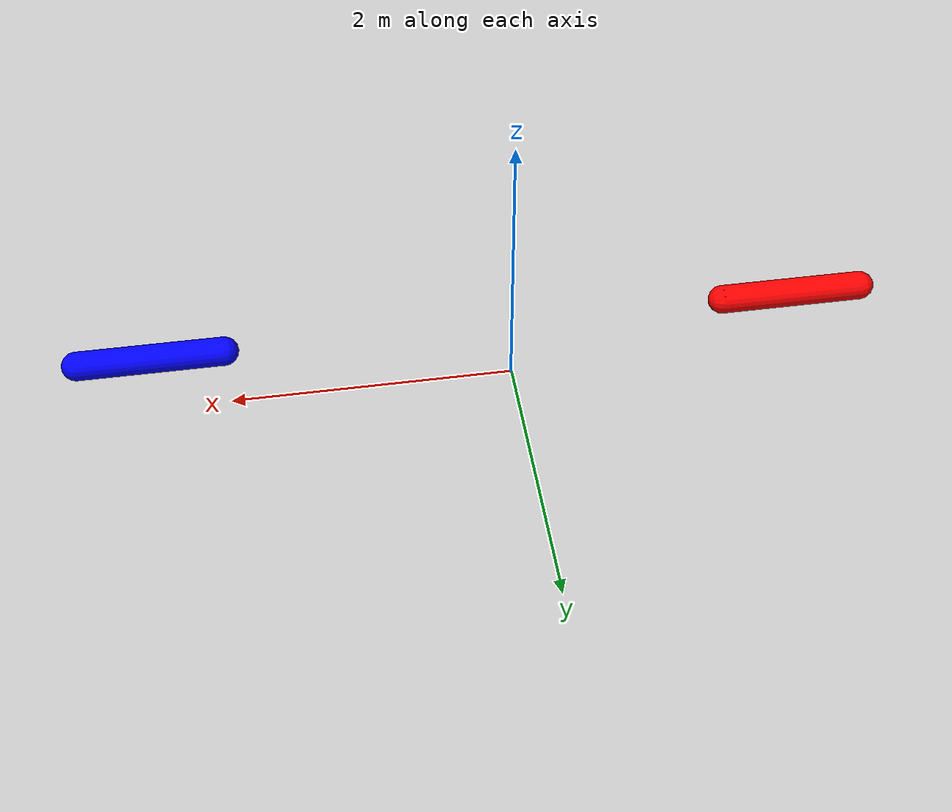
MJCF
<mujoco>
  <option gravity="0 0 -9.81" />
  <worldbody>
    <light diffuse="0.5 0.5 0.5" pos="0 0 5" dir="0 0 -1" />
    <body name="object_3" pos="0 0 -10">
      <geom type="plane" size="50 50 0.1" rgba="0.85 0.85 0.85 1" friction="1 1 1" />
    </body>
    <body name="object_1" pos="-2 0 0.5">
      <geom type="capsule" fromto="-0.5 0 0 0.5 0 0" size="0.1" mass="2" rgba="1 0 0 1" />
      <joint type="hinge" axis="0 0 1" name="object_1_joint" />
    </body>
    <body name="object_2" pos="2 0 0.5">
      <geom type="capsule" fromto="0 0 0 1 0 0" size="0.1" mass="2" rgba="0 0 1 1" />
      <joint type="hinge" axis="0 0 1" name="object_2_joint" />
    </body>
  </worldbody>
</mujoco>
